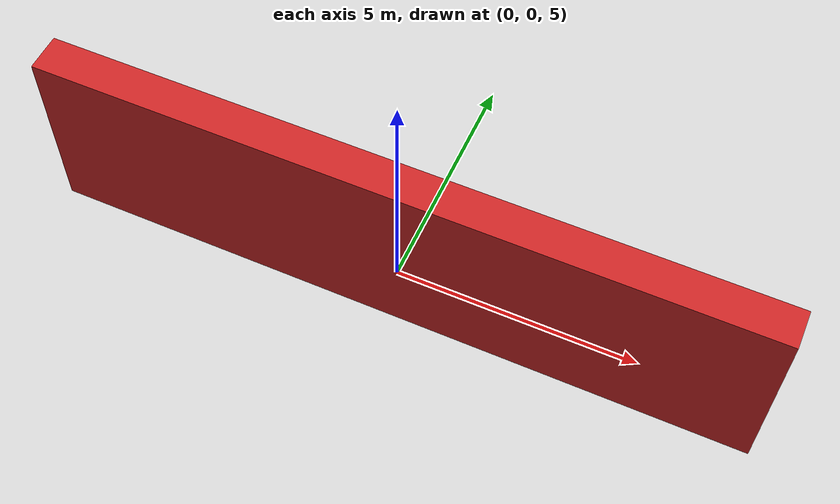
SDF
<?xml version="1.0" ?>
<sdf version="1.5">
  <model name="maze_wall_high">
    <static>true</static>
    <link name="highlink">
      <pose>0 0 6 0 0 0</pose>
      <collision name="collision_h">
        <geometry>
          <box>
            <size>15 0.8 4</size>
          </box>
        </geometry>
      </collision>
      <visual name="visual_v">
        <geometry>
          <box>
            <size>15 0.8 4</size>
          </box>
        </geometry>
        <material>
          <script>
            <name>Gazebo/Red</name>
            <uri>file://media/materials/scripts/gazebo.material</uri>
          </script>
        </material>
      </visual>
    </link>
  </model>
</sdf>
